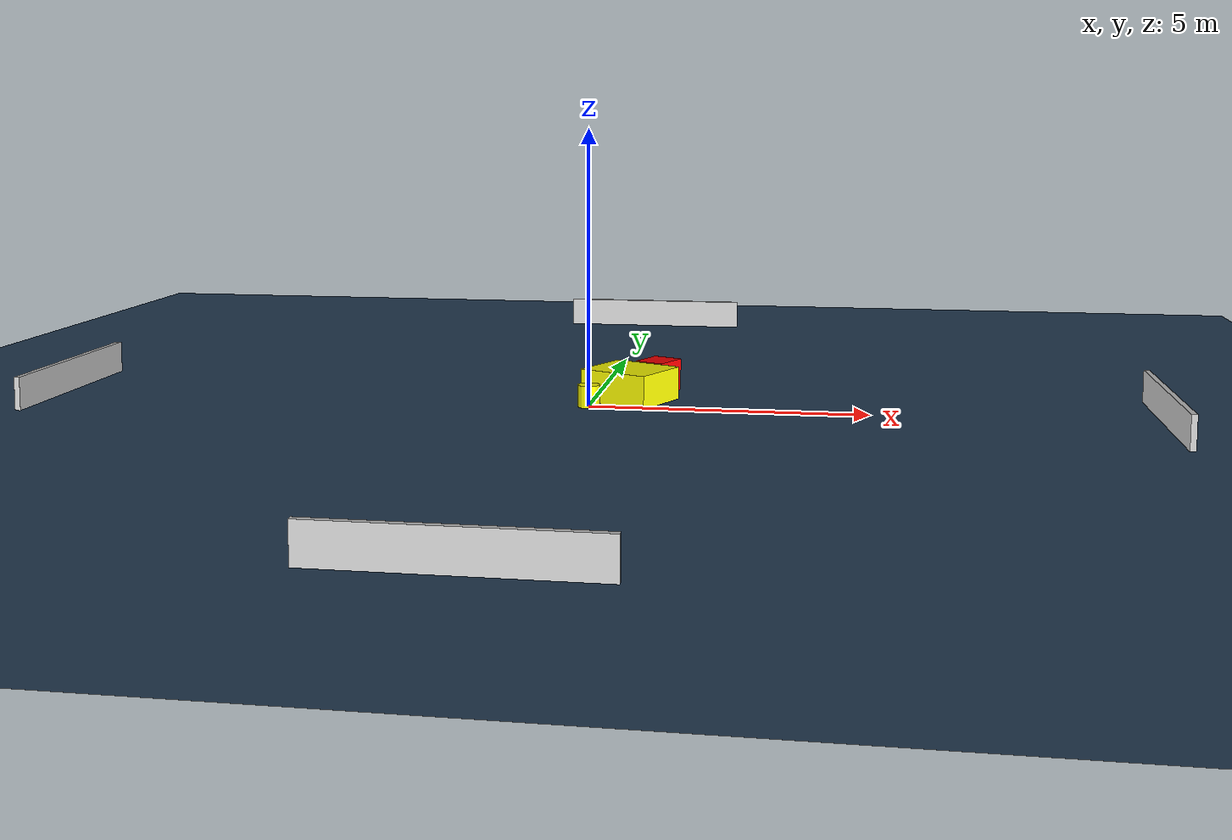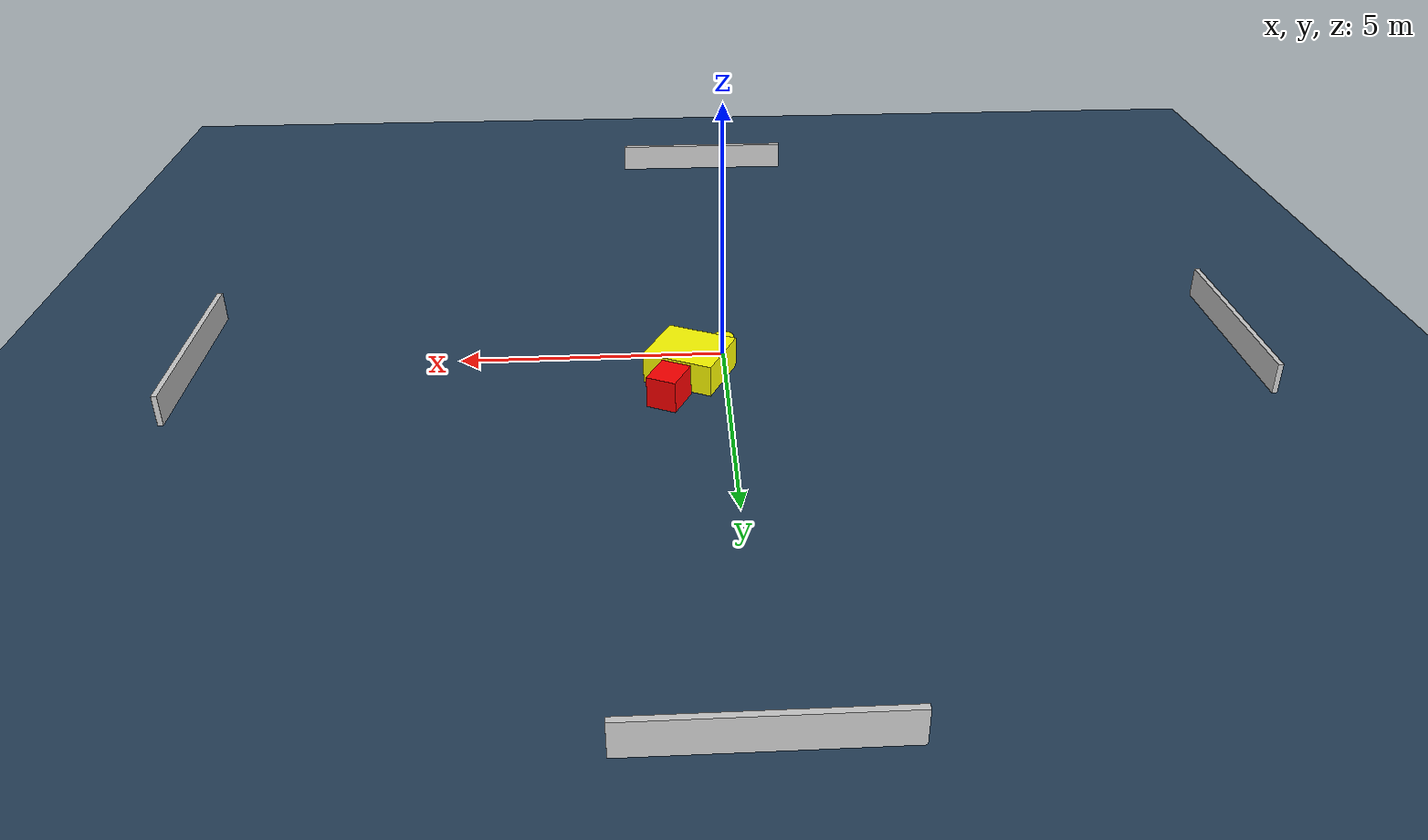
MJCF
<?xml version="1.0" ?>
<mujoco model="generated_environment">
  <option timestep="0.01" integrator="RK4" cone="elliptic"/>
  <default>
    <geom density="1"/>
  </default>
  <asset>
    <texture builtin="gradient" height="3072" name="skybox" rgb1="0.3 0.5 0.7" rgb2="0 0 0" type="skybox" width="512"/>
    <texture builtin="checker" height="300" name="groundplane" rgb1="0.2 0.3 0.4" rgb2="0.1 0.2 0.3" type="2d" width="300"/>
    <material name="groundplane" reflectance="0.2" texrepeat="5 5" texture="groundplane"/>
  </asset>
  <worldbody>
    <light dir="0 0 -1" directional="true" pos="0 0 1.5"/>
    <geom condim="3" friction="0.5 0.005 0.001" material="groundplane" name="floor" pos="0 0 0" size="0 0 0.05" type="plane"/>
    <body name="walls">
      <geom name="wall_1" condim="4" pos="-10.0 0.0 0.3" rgba="0.800000011920929 0.800000011920929 0.800000011920929 1.0" size="0.05 2.0 0.3" type="box"/>
      <geom name="wall_2" condim="4" pos="10.0 0.0 0.3" rgba="0.800000011920929 0.800000011920929 0.800000011920929 1.0" size="0.05 2.0 0.3" type="box"/>
      <geom name="wall_3" condim="4" pos="0.0 -10.0 0.3" rgba="0.800000011920929 0.800000011920929 0.800000011920929 1.0" size="2.0 0.05 0.3" type="box"/>
      <geom name="wall_4" condim="4" pos="0.0 10.0 0.3" rgba="0.800000011920929 0.800000011920929 0.800000011920929 1.0" size="2.0 0.05 0.3" type="box"/>
    </body>
    <body name="robot">
      <joint name="joint_x" type="slide" pos="0 0 0" axis="1 0 0"/>
      <joint name="joint_y" type="slide" pos="0 0 0" axis="0 1 0"/>
      <geom name="robot" type="cylinder" pos="0.0 0.0 0.2" size="0.2 0.2 0.0" mass="5.0" friction="1.0 0.005 0.0001" condim="4" rgba="1.0 1.0 0.0 1.0"/>
    </body>
    <body name="obstacle_1_movable">
      <geom name="obstacle_1_movable" condim="4" pos="0.6595719788868921 0.7047098182618864 0.3" euler="0 0 64.4215521853011" friction="0.0 0.005 0.001" rgba="1.0 1.0 0.0 1.0" size="0.6036027688727222 0.6787451528832795 0.3" type="box" mass="0.1"/>
      <joint type="free"/>
    </body>
    <body name="obstacle_2_static">
      <geom name="obstacle_2_static" condim="4" pos="1.072461769205267 1.6444029503870035 0.3" euler="0 0 64.30434310066276" friction="0.0 0.005 0.001" rgba="1.0 0.0 0.0 1.0" size="0.3422886395555139 0.2836727403121452 0.3" type="box"/>
    </body>
  </worldbody>
  <actuator>
    <motor name="actuator_x" joint="joint_x" gear="1" ctrlrange="-1 1"/>
    <motor name="actuator_y" joint="joint_y" gear="1" ctrlrange="-1 1"/>
  </actuator>
</mujoco>
